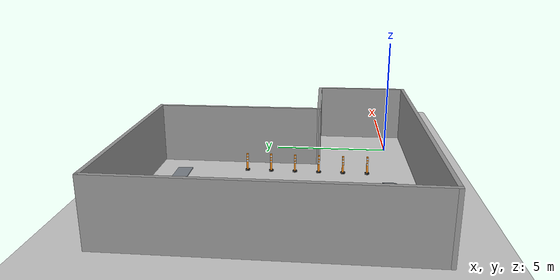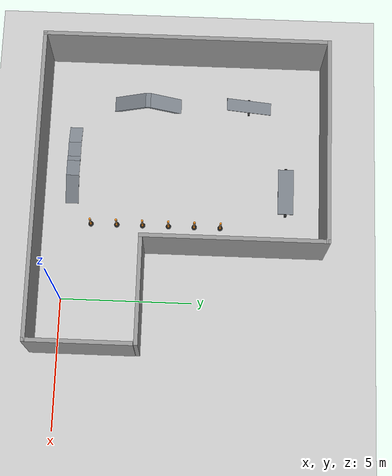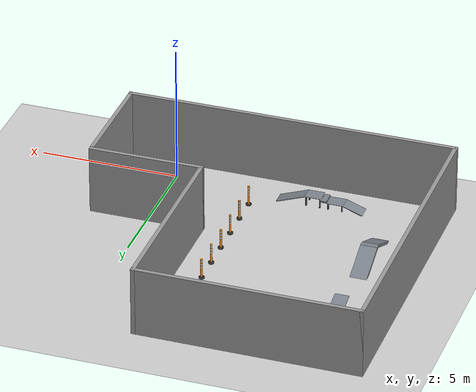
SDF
<sdf version="1.7">
 <world name="default">
  <light name="sun" type="directional">
   <pose>0 0 10 0 -0 0</pose>
   <diffuse>0.8 0.8 0.8 1</diffuse>
   <specular>0.1 0.1 0.1 1</specular>
   <attenuation>
    <range>1000</range>
    <constant>0.9</constant>
    <linear>0.01</linear>
    <quadratic>0.001</quadratic>
   </attenuation>
   <direction>-0.5 0.5 -1</direction>
   <spot><inner_angle>0</inner_angle><outer_angle>0</outer_angle><falloff>0</falloff></spot>
  </light>
  <model name="ground_plane">
   <static>1</static>
   <link name="link">
    <collision name="collision">
     <geometry><plane><normal>0 0 1</normal><size>100 100</size></plane></geometry>
     <surface><friction><ode><mu>100</mu><mu2>50</mu2></ode></friction></surface>
    </collision>
    <visual name="visual">
     <cast_shadows>0</cast_shadows>
     <geometry><plane><normal>0 0 1</normal><size>100 100</size></plane></geometry>
     <material>
      <script><uri>file://media/materials/scripts/gazebo.material</uri><name>Gazebo/Grey</name></script>
     </material>
    </visual>
   </link>
  </model>
  <model name="a_frame_ramp">
   <static>1</static>
   <pose>-8.0 3.0 0 0 0 1.57</pose>
   <link name="a_frame_link">
    <collision name="ramp_left_collision">
     <geometry><box><size>1.4 0.6 0.1</size></box></geometry>
     <pose>-0.713 0 0.209 0 -0.436 0</pose>
    </collision>
    <visual name="ramp_left_visual">
     <geometry><box><size>1.4 0.6 0.1</size></box></geometry>
     <pose>-0.713 0 0.209 0 -0.436 0</pose>
     <material>
      <script><uri>file://media/materials/scripts/gazebo.material</uri><name>Gazebo/Grey</name></script>
      <ambient>0.4902 0.5176 0.5490 1</ambient>
      <diffuse>0.4902 0.5176 0.5490 1</diffuse>
     </material>
    </visual>
    <collision name="ramp_right_collision">
     <geometry><box><size>1.4 0.6 0.1</size></box></geometry>
     <pose>0.713 0 0.209 0 0.436 0</pose>
    </collision>
    <visual name="ramp_right_visual">
     <geometry><box><size>1.4 0.6 0.1</size></box></geometry>
     <pose>0.713 0 0.209 0 0.436 0</pose>
     <material>
      <script><uri>file://media/materials/scripts/gazebo.material</uri><name>Gazebo/Grey</name></script>
      <ambient>0.4902 0.5176 0.5490 1</ambient>
      <diffuse>0.4902 0.5176 0.5490 1</diffuse>
     </material>
    </visual>
    <collision name="peak_collision">
     <geometry><box><size>0.2 0.6 0.1</size></box></geometry>
     <pose>0 0 0.5 0 0 0</pose>
    </collision>
    <visual name="peak_visual">
     <geometry><box><size>0.2 0.6 0.1</size></box></geometry>
     <pose>0 0 0.5 0 0 0</pose>
     <material>
      <script><uri>file://media/materials/scripts/gazebo.material</uri><name>Gazebo/Grey</name></script>
      <ambient>0.4902 0.5176 0.5490 1</ambient>
      <diffuse>0.4902 0.5176 0.5490 1</diffuse>
     </material>
    </visual>
   </link>
  </model>
  <model name="suspension_bridge">
   <static>1</static>
   <pose>-4.5 8.5 0 0 0 0</pose>
   <link name="bridge_link">
    <collision name="deck_collision">
     <geometry><box><size>1.8 0.6 0.05</size></box></geometry>
     <pose>0 0 0.25 0 0 0</pose>
    </collision>
    <visual name="deck_visual">
     <geometry><box><size>1.8 0.6 0.05</size></box></geometry>
     <pose>0 0 0.25 0 0 0</pose>
     <material>
      <script><uri>file://media/materials/scripts/gazebo.material</uri><name>Gazebo/Grey</name></script>
      <ambient>0.4902 0.5176 0.5490 1</ambient>
      <diffuse>0.4902 0.5176 0.5490 1</diffuse>
     </material>
    </visual>
    <collision name="post1_collision">
     <geometry><box><size>0.1 0.1 0.25</size></box></geometry>
     <pose>-0.9 0 0.125 0 0 0</pose>
    </collision>
    <visual name="post1_visual">
     <geometry><box><size>0.1 0.1 0.25</size></box></geometry>
     <pose>-0.9 0 0.125 0 0 0</pose>
     <material>
      <script><uri>file://media/materials/scripts/gazebo.material</uri><name>Gazebo/Black</name></script>
     </material>
    </visual>
    <collision name="post2_collision">
     <geometry><box><size>0.1 0.1 0.25</size></box></geometry>
     <pose>0.9 0 0.125 0 0 0</pose>
    </collision>
    <visual name="post2_visual">
     <geometry><box><size>0.1 0.1 0.25</size></box></geometry>
     <pose>0.9 0 0.125 0 0 0</pose>
     <material>
      <script><uri>file://media/materials/scripts/gazebo.material</uri><name>Gazebo/Black</name></script>
     </material>
    </visual>
   </link>
  </model>
  <model name="balance_seesaw">
   <pose>-8.0 7.0 0 0 0 -1.57</pose>
   <link name="seesaw_base">
    <kinematic>1</kinematic>
    <gravity>0</gravity>
    <collision name="post_left_col">
     <geometry><box><size>0.08 0.08 0.2</size></box></geometry>
     <pose>0 -0.26 0.1 0 0 0</pose>
    </collision>
    <visual name="post_left_vis">
     <geometry><box><size>0.08 0.08 0.2</size></box></geometry>
     <pose>0 -0.26 0.1 0 0 0</pose>
     <material>
      <script><uri>file://media/materials/scripts/gazebo.material</uri><name>Gazebo/Black</name></script>
     </material>
    </visual>
    <collision name="post_right_col">
     <geometry><box><size>0.08 0.08 0.2</size></box></geometry>
     <pose>0 0.26 0.1 0 0 0</pose>
    </collision>
    <visual name="post_right_vis">
     <geometry><box><size>0.08 0.08 0.2</size></box></geometry>
     <pose>0 0.26 0.1 0 0 0</pose>
     <material>
      <script><uri>file://media/materials/scripts/gazebo.material</uri><name>Gazebo/Black</name></script>
     </material>
    </visual>
    <collision name="pivot_cylinder_col">
     <geometry><cylinder><radius>0.01</radius><length>0.6</length></cylinder></geometry>
     <pose>0 0 0.2 1.5708 0 0</pose>
    </collision>
    <visual name="pivot_cylinder_vis">
     <geometry><cylinder><radius>0.01</radius><length>0.6</length></cylinder></geometry>
     <pose>0 0 0.2 1.5708 0 0</pose>
     <material>
      <script><uri>file://media/materials/scripts/gazebo.material</uri><name>Gazebo/Grey</name></script>
     </material>
    </visual>
   </link>
   <link name="seesaw_board">
    <inertial>
     <mass>5.0</mass>
     <inertia><ixx>0.104</ixx><ixy>0</ixy><ixz>0</ixz><iyy>1.35</iyy><iyz>0</iyz><izz>1.45</izz></inertia>
    </inertial>
    <collision name="board_collision">
     <geometry><box><size>1.8 0.5 0.025</size></box></geometry>
     <pose>0 0 0.2225 0 -0.23 0</pose>
     <surface><friction><ode><mu>1.0</mu><mu2>1.0</mu2></ode></friction></surface>
    </collision>
    <visual name="board_visual">
     <geometry><box><size>1.8 0.5 0.025</size></box></geometry>
     <pose>0 0 0.2225 0 -0.23 0</pose>
     <material>
      <script><uri>file://media/materials/scripts/gazebo.material</uri><name>Gazebo/Grey</name></script>
      <ambient>0.4902 0.5176 0.5490 1</ambient>
      <diffuse>0.4902 0.5176 0.5490 1</diffuse>
     </material>
    </visual>
   </link>
   <joint name="seesaw_joint" type="revolute">
    <parent>seesaw_base</parent>
    <child>seesaw_board</child>
    <pose>0 0 0.2 0 0 0</pose>
    <axis>
     <xyz>0 1 0</xyz>
     <limit><lower>-0.15</lower><upper>0.15</upper><effort>100</effort><velocity>2</velocity></limit>
     <dynamics><damping>0.01</damping><friction>0.01</friction></dynamics>
    </axis>
   </joint>
  </model>
  <model name="slalom_cones">
   <static>1</static>
   <pose>-3.0 1.0 0 0 0 1.571</pose>
   <link name="cone_1">
    <collision name="base_col_1">
     <geometry><cylinder><radius>0.1</radius><length>0.05</length></cylinder></geometry>
     <pose>0 0 0.025 0 0 0</pose>
    </collision>
    <visual name="base_vis_1">
     <geometry><cylinder><radius>0.1</radius><length>0.05</length></cylinder></geometry>
     <pose>0 0 0.025 0 0 0</pose>
     <material><script><name>Gazebo/Black</name></script></material>
    </visual>
    <collision name="cone_col_1">
     <geometry><cylinder><radius>0.04</radius><length>0.7</length></cylinder></geometry>
     <pose>0 0 0.40 0 0 0</pose>
    </collision>
    <visual name="cone_vis_1">
     <geometry><cylinder><radius>0.04</radius><length>0.7</length></cylinder></geometry>
     <pose>0 0 0.40 0 0 0</pose>
     <material><script><name>Gazebo/Orange</name></script></material>
    </visual>
    <visual name="stripe1_vis_1">
     <geometry><cylinder><radius>0.041</radius><length>0.06</length></cylinder></geometry>
     <pose>0 0 0.66 0 0 0</pose>
     <material><script><name>Gazebo/White</name></script></material>
    </visual>
    <visual name="stripe2_vis_1">
     <geometry><cylinder><radius>0.041</radius><length>0.06</length></cylinder></geometry>
     <pose>0 0 0.54 0 0 0</pose>
     <material><script><name>Gazebo/White</name></script></material>
    </visual>
    <visual name="stripe3_vis_1">
     <geometry><cylinder><radius>0.041</radius><length>0.06</length></cylinder></geometry>
     <pose>0 0 0.42 0 0 0</pose>
     <material><script><name>Gazebo/White</name></script></material>
    </visual>
   </link>
   <link name="cone_2">
    <pose>1.0 0 0 0 0 0</pose>
    <collision name="base_col_2">
     <geometry><cylinder><radius>0.1</radius><length>0.05</length></cylinder></geometry>
     <pose>0 0 0.025 0 0 0</pose>
    </collision>
    <visual name="base_vis_2">
     <geometry><cylinder><radius>0.1</radius><length>0.05</length></cylinder></geometry>
     <pose>0 0 0.025 0 0 0</pose>
     <material><script><name>Gazebo/Black</name></script></material>
    </visual>
    <collision name="cone_col_2">
     <geometry><cylinder><radius>0.04</radius><length>0.7</length></cylinder></geometry>
     <pose>0 0 0.40 0 0 0</pose>
    </collision>
    <visual name="cone_vis_2">
     <geometry><cylinder><radius>0.04</radius><length>0.7</length></cylinder></geometry>
     <pose>0 0 0.40 0 0 0</pose>
     <material><script><name>Gazebo/Orange</name></script></material>
    </visual>
    <visual name="stripe1_vis_2">
     <geometry><cylinder><radius>0.041</radius><length>0.06</length></cylinder></geometry>
     <pose>0 0 0.66 0 0 0</pose>
     <material><script><name>Gazebo/White</name></script></material>
    </visual>
    <visual name="stripe2_vis_2">
     <geometry><cylinder><radius>0.041</radius><length>0.06</length></cylinder></geometry>
     <pose>0 0 0.54 0 0 0</pose>
     <material><script><name>Gazebo/White</name></script></material>
    </visual>
    <visual name="stripe3_vis_2">
     <geometry><cylinder><radius>0.041</radius><length>0.06</length></cylinder></geometry>
     <pose>0 0 0.42 0 0 0</pose>
     <material><script><name>Gazebo/White</name></script></material>
    </visual>
   </link>
   <link name="cone_3">
    <pose>2.0 0 0 0 0 0</pose>
    <collision name="base_col_3">
     <geometry><cylinder><radius>0.1</radius><length>0.05</length></cylinder></geometry>
     <pose>0 0 0.025 0 0 0</pose>
    </collision>
    <visual name="base_vis_3">
     <geometry><cylinder><radius>0.1</radius><length>0.05</length></cylinder></geometry>
     <pose>0 0 0.025 0 0 0</pose>
     <material><script><name>Gazebo/Black</name></script></material>
    </visual>
    <collision name="cone_col_3">
     <geometry><cylinder><radius>0.04</radius><length>0.7</length></cylinder></geometry>
     <pose>0 0 0.40 0 0 0</pose>
    </collision>
    <visual name="cone_vis_3">
     <geometry><cylinder><radius>0.04</radius><length>0.7</length></cylinder></geometry>
     <pose>0 0 0.40 0 0 0</pose>
     <material><script><name>Gazebo/Orange</name></script></material>
    </visual>
    <visual name="stripe1_vis_3">
     <geometry><cylinder><radius>0.041</radius><length>0.06</length></cylinder></geometry>
     <pose>0 0 0.66 0 0 0</pose>
     <material><script><name>Gazebo/White</name></script></material>
    </visual>
    <visual name="stripe2_vis_3">
     <geometry><cylinder><radius>0.041</radius><length>0.06</length></cylinder></geometry>
     <pose>0 0 0.54 0 0 0</pose>
     <material><script><name>Gazebo/White</name></script></material>
    </visual>
    <visual name="stripe3_vis_3">
     <geometry><cylinder><radius>0.041</radius><length>0.06</length></cylinder></geometry>
     <pose>0 0 0.42 0 0 0</pose>
     <material><script><name>Gazebo/White</name></script></material>
    </visual>
   </link>
   <link name="cone_4">
    <pose>3.0 0 0 0 0 0</pose>
    <collision name="base_col_4">
     <geometry><cylinder><radius>0.1</radius><length>0.05</length></cylinder></geometry>
     <pose>0 0 0.025 0 0 0</pose>
    </collision>
    <visual name="base_vis_4">
     <geometry><cylinder><radius>0.1</radius><length>0.05</length></cylinder></geometry>
     <pose>0 0 0.025 0 0 0</pose>
     <material><script><name>Gazebo/Black</name></script></material>
    </visual>
    <collision name="cone_col_4">
     <geometry><cylinder><radius>0.04</radius><length>0.7</length></cylinder></geometry>
     <pose>0 0 0.40 0 0 0</pose>
    </collision>
    <visual name="cone_vis_4">
     <geometry><cylinder><radius>0.04</radius><length>0.7</length></cylinder></geometry>
     <pose>0 0 0.40 0 0 0</pose>
     <material><script><name>Gazebo/Orange</name></script></material>
    </visual>
    <visual name="stripe1_vis_4">
     <geometry><cylinder><radius>0.041</radius><length>0.06</length></cylinder></geometry>
     <pose>0 0 0.66 0 0 0</pose>
     <material><script><name>Gazebo/White</name></script></material>
    </visual>
    <visual name="stripe2_vis_4">
     <geometry><cylinder><radius>0.041</radius><length>0.06</length></cylinder></geometry>
     <pose>0 0 0.54 0 0 0</pose>
     <material><script><name>Gazebo/White</name></script></material>
    </visual>
    <visual name="stripe3_vis_4">
     <geometry><cylinder><radius>0.041</radius><length>0.06</length></cylinder></geometry>
     <pose>0 0 0.42 0 0 0</pose>
     <material><script><name>Gazebo/White</name></script></material>
    </visual>
   </link>
   <link name="cone_5">
    <pose>4.0 0 0 0 0 0</pose>
    <collision name="base_col_5">
     <geometry><cylinder><radius>0.1</radius><length>0.05</length></cylinder></geometry>
     <pose>0 0 0.025 0 0 0</pose>
    </collision>
    <visual name="base_vis_5">
     <geometry><cylinder><radius>0.1</radius><length>0.05</length></cylinder></geometry>
     <pose>0 0 0.025 0 0 0</pose>
     <material><script><name>Gazebo/Black</name></script></material>
    </visual>
    <collision name="cone_col_5">
     <geometry><cylinder><radius>0.04</radius><length>0.7</length></cylinder></geometry>
     <pose>0 0 0.40 0 0 0</pose>
    </collision>
    <visual name="cone_vis_5">
     <geometry><cylinder><radius>0.04</radius><length>0.7</length></cylinder></geometry>
     <pose>0 0 0.40 0 0 0</pose>
     <material><script><name>Gazebo/Orange</name></script></material>
    </visual>
    <visual name="stripe1_vis_5">
     <geometry><cylinder><radius>0.041</radius><length>0.06</length></cylinder></geometry>
     <pose>0 0 0.66 0 0 0</pose>
     <material><script><name>Gazebo/White</name></script></material>
    </visual>
    <visual name="stripe2_vis_5">
     <geometry><cylinder><radius>0.041</radius><length>0.06</length></cylinder></geometry>
     <pose>0 0 0.54 0 0 0</pose>
     <material><script><name>Gazebo/White</name></script></material>
    </visual>
    <visual name="stripe3_vis_5">
     <geometry><cylinder><radius>0.041</radius><length>0.06</length></cylinder></geometry>
     <pose>0 0 0.42 0 0 0</pose>
     <material><script><name>Gazebo/White</name></script></material>
    </visual>
   </link>
   <link name="cone_6">
    <pose>5.0 0 0 0 0 0</pose>
    <collision name="base_col_6">
     <geometry><cylinder><radius>0.1</radius><length>0.05</length></cylinder></geometry>
     <pose>0 0 0.025 0 0 0</pose>
    </collision>
    <visual name="base_vis_6">
     <geometry><cylinder><radius>0.1</radius><length>0.05</length></cylinder></geometry>
     <pose>0 0 0.025 0 0 0</pose>
     <material><script><name>Gazebo/Black</name></script></material>
    </visual>
    <collision name="cone_col_6">
     <geometry><cylinder><radius>0.04</radius><length>0.7</length></cylinder></geometry>
     <pose>0 0 0.40 0 0 0</pose>
    </collision>
    <visual name="cone_vis_6">
     <geometry><cylinder><radius>0.04</radius><length>0.7</length></cylinder></geometry>
     <pose>0 0 0.40 0 0 0</pose>
     <material><script><name>Gazebo/Orange</name></script></material>
    </visual>
    <visual name="stripe1_vis_6">
     <geometry><cylinder><radius>0.041</radius><length>0.06</length></cylinder></geometry>
     <pose>0 0 0.66 0 0 0</pose>
     <material><script><name>Gazebo/White</name></script></material>
    </visual>
    <visual name="stripe2_vis_6">
     <geometry><cylinder><radius>0.041</radius><length>0.06</length></cylinder></geometry>
     <pose>0 0 0.54 0 0 0</pose>
     <material><script><name>Gazebo/White</name></script></material>
    </visual>
    <visual name="stripe3_vis_6">
     <geometry><cylinder><radius>0.041</radius><length>0.06</length></cylinder></geometry>
     <pose>0 0 0.42 0 0 0</pose>
     <material><script><name>Gazebo/White</name></script></material>
    </visual>
   </link>
  </model>
  <model name="platforms_and_ramps">
   <static>1</static>
   <pose>-7.0 0.2 0 0 0 0</pose>
   <link name="platforms_link">
    <collision name="ramp1_col">
     <geometry><box><size>0.75 0.5 0.025</size></box></geometry>
     <pose>0.402 0 0.1098 0 -0.35 0</pose>
    </collision>
    <visual name="ramp1_vis">
     <geometry><box><size>0.75 0.5 0.025</size></box></geometry>
     <pose>0.402 0 0.1098 0 -0.35 0</pose>
     <material>
      <script><name>Gazebo/Grey</name></script>
      <ambient>0.4902 0.5176 0.5490 1</ambient>
      <diffuse>0.4902 0.5176 0.5490 1</diffuse>
     </material>
    </visual>
    <collision name="plat1_top_col">
     <geometry><box><size>0.6 0.5 0.01</size></box></geometry>
     <pose>1.05 0 0.245 0 0 0</pose>
    </collision>
    <visual name="plat1_top_vis">
     <geometry><box><size>0.6 0.5 0.01</size></box></geometry>
     <pose>1.05 0 0.245 0 0 0</pose>
     <material>
      <script><name>Gazebo/Grey</name></script>
      <ambient>0.4902 0.5176 0.5490 1</ambient>
      <diffuse>0.4902 0.5176 0.5490 1</diffuse>
     </material>
    </visual>
    <collision name="plat1_leg1_col">
     <geometry><box><size>0.05 0.05 0.25</size></box></geometry>
     <pose>0.8 0.2 0.124 0 0 0</pose>
    </collision>
    <visual name="plat1_leg1_vis">
     <geometry><box><size>0.05 0.05 0.25</size></box></geometry>
     <pose>0.8 0.2 0.124 0 0 0</pose>
     <material><script><name>Gazebo/Black</name></script></material>
    </visual>
    <collision name="plat1_leg2_col">
     <geometry><box><size>0.05 0.05 0.25</size></box></geometry>
     <pose>0.8 -0.2 0.124 0 0 0</pose>
    </collision>
    <visual name="plat1_leg2_vis">
     <geometry><box><size>0.05 0.05 0.25</size></box></geometry>
     <pose>0.8 -0.2 0.124 0 0 0</pose>
     <material><script><name>Gazebo/Black</name></script></material>
    </visual>
    <collision name="plat1_leg3_col">
     <geometry><box><size>0.05 0.05 0.25</size></box></geometry>
     <pose>1.3 0.2 0.124 0 0 0</pose>
    </collision>
    <visual name="plat1_leg3_vis">
     <geometry><box><size>0.05 0.05 0.25</size></box></geometry>
     <pose>1.3 0.2 0.124 0 0 0</pose>
     <material><script><name>Gazebo/Black</name></script></material>
    </visual>
    <collision name="plat1_leg4_col">
     <geometry><box><size>0.05 0.05 0.25</size></box></geometry>
     <pose>1.3 -0.2 0.124 0 0 0</pose>
    </collision>
    <visual name="plat1_leg4_vis">
     <geometry><box><size>0.05 0.05 0.25</size></box></geometry>
     <pose>1.3 -0.2 0.124 0 0 0</pose>
     <material><script><name>Gazebo/Black</name></script></material>
    </visual>
    <collision name="step_col">
     <geometry><box><size>0.2 0.5 0.06</size></box></geometry>
     <pose>1.45 0 0.28 0 0 0</pose>
    </collision>
    <visual name="step_vis">
     <geometry><box><size>0.2 0.5 0.06</size></box></geometry>
     <pose>1.45 0 0.28 0 0 0</pose>
     <material>
      <script><name>Gazebo/Grey</name></script>
      <ambient>0.4902 0.5176 0.5490 1</ambient>
      <diffuse>0.4902 0.5176 0.5490 1</diffuse>
     </material>
    </visual>
    <collision name="plat2_top_col">
     <geometry><box><size>0.6 0.5 0.01</size></box></geometry>
     <pose>1.85 0 0.365 0 0 0</pose>
    </collision>
    <visual name="plat2_top_vis">
     <geometry><box><size>0.6 0.5 0.01</size></box></geometry>
     <pose>1.85 0 0.365 0 0 0</pose>
     <material>
      <script><name>Gazebo/Grey</name></script>
      <ambient>0.4902 0.5176 0.5490 1</ambient>
      <diffuse>0.4902 0.5176 0.5490 1</diffuse>
     </material>
    </visual>
    <collision name="plat2_leg1_col">
     <geometry><box><size>0.05 0.05 0.37</size></box></geometry>
     <pose>1.6 0.2 0.184 0 0 0</pose>
    </collision>
    <visual name="plat2_leg1_vis">
     <geometry><box><size>0.05 0.05 0.37</size></box></geometry>
     <pose>1.6 0.2 0.184 0 0 0</pose>
     <material><script><name>Gazebo/Black</name></script></material>
    </visual>
    <collision name="plat2_leg2_col">
     <geometry><box><size>0.05 0.05 0.37</size></box></geometry>
     <pose>1.6 -0.2 0.184 0 0 0</pose>
    </collision>
    <visual name="plat2_leg2_vis">
     <geometry><box><size>0.05 0.05 0.37</size></box></geometry>
     <pose>1.6 -0.2 0.184 0 0 0</pose>
     <material><script><name>Gazebo/Black</name></script></material>
    </visual>
    <collision name="plat2_leg3_col">
     <geometry><box><size>0.05 0.05 0.37</size></box></geometry>
     <pose>2.1 0.2 0.184 0 0 0</pose>
    </collision>
    <visual name="plat2_leg3_vis">
     <geometry><box><size>0.05 0.05 0.37</size></box></geometry>
     <pose>2.1 0.2 0.184 0 0 0</pose>
     <material><script><name>Gazebo/Black</name></script></material>
    </visual>
    <collision name="plat2_leg4_col">
     <geometry><box><size>0.05 0.05 0.37</size></box></geometry>
     <pose>2.1 -0.2 0.184 0 0 0</pose>
    </collision>
    <visual name="plat2_leg4_vis">
     <geometry><box><size>0.05 0.05 0.37</size></box></geometry>
     <pose>2.1 -0.2 0.184 0 0 0</pose>
     <material><script><name>Gazebo/Black</name></script></material>
    </visual>
    <collision name="ramp2_col">
     <geometry><box><size>1.10 0.5 0.025</size></box></geometry>
     <pose>2.662 0 0.17 0 0.35 0</pose>
    </collision>
    <visual name="ramp2_vis">
     <geometry><box><size>1.10 0.5 0.025</size></box></geometry>
     <pose>2.662 0 0.17 0 0.35 0</pose>
     <material>
      <script><name>Gazebo/Grey</name></script>
      <ambient>0.4902 0.5176 0.5490 1</ambient>
      <diffuse>0.4902 0.5176 0.5490 1</diffuse>
     </material>
    </visual>
   </link>
  </model>
  <gravity>0 0 -9.8</gravity>
  <magnetic_field>6e-06 2.3e-05 -4.2e-05</magnetic_field>
  <atmosphere type="adiabatic"/>
  <physics name="default_physics" default="0" type="ode">
   <max_step_size>0.001</max_step_size>
   <real_time_factor>1</real_time_factor>
   <real_time_update_rate>1000</real_time_update_rate>
  </physics>
  <scene><ambient>0.4 0.4 0.4 1</ambient><background>0.7 0.7 0.7 1</background><shadows>1</shadows></scene>
  <spherical_coordinates>
   <surface_model>EARTH_WGS84</surface_model>
   <latitude_deg>0</latitude_deg>
   <longitude_deg>0</longitude_deg>
   <elevation>0</elevation>
   <heading_deg>0</heading_deg>
  </spherical_coordinates>
  <audio><device>default</device></audio>
  <model name="Arena">
   <pose>-3.90745 4.47486 0 0 -0 0</pose>
   <link name="Wall_0">
    <collision name="Wall_0_Collision">
     <geometry><box><size>4 0.15 2.5</size></box></geometry>
     <pose>0 0 1.25 0 -0 0</pose>
    </collision>
    <visual name="Wall_0_Visual">
     <pose>0 0 1.25 0 -0 0</pose>
     <geometry><box><size>4 0.15 2.5</size></box></geometry>
     <material>
      <script><uri>file://media/materials/scripts/gazebo.material</uri><name>Gazebo/Grey</name></script>
      <ambient>0.870588 0.866667 0.854902 1</ambient>
     </material>
     <meta><layer>0</layer></meta>
    </visual>
    <pose>5.925 -3.5 0 0 -0 1.5708</pose>
   </link>
   <link name="Wall_11">
    <collision name="Wall_11_Collision">
     <geometry><box><size>7 0.15 2.5</size></box></geometry>
     <pose>0 0 1.25 0 -0 0</pose>
    </collision>
    <visual name="Wall_11_Visual">
     <pose>0 0 1.25 0 -0 0</pose>
     <geometry><box><size>7 0.15 2.5</size></box></geometry>
     <material>
      <script><uri>file://media/materials/scripts/gazebo.material</uri><name>Gazebo/Grey</name></script>
      <ambient>0.870588 0.866667 0.854902 1</ambient>
     </material>
     <meta><layer>0</layer></meta>
    </visual>
    <pose>1.925 2 0 0 -0 -1.5708</pose>
   </link>
   <link name="Wall_12">
    <collision name="Wall_12_Collision">
     <geometry><box><size>4.1391 0.15 2.5</size></box></geometry>
     <pose>0 0 1.25 0 -0 0</pose>
    </collision>
    <visual name="Wall_12_Visual">
     <pose>0 0 1.25 0 -0 0</pose>
     <geometry><box><size>4.1391 0.15 2.5</size></box></geometry>
     <material>
      <script><uri>file://media/materials/scripts/gazebo.material</uri><name>Gazebo/Grey</name></script>
      <ambient>0.870588 0.866667 0.854902 1</ambient>
     </material>
     <meta><layer>0</layer></meta>
    </visual>
    <pose>3.91954 -1.41861 0 0 -0 0.003203</pose>
   </link>
   <link name="Wall_2">
    <collision name="Wall_2_Collision">
     <geometry><box><size>12 0.15 2.5</size></box></geometry>
     <pose>0 0 1.25 0 -0 0</pose>
    </collision>
    <visual name="Wall_2_Visual">
     <pose>0 0 1.25 0 -0 0</pose>
     <geometry><box><size>12 0.15 2.5</size></box></geometry>
     <material>
      <script><uri>file://media/materials/scripts/gazebo.material</uri><name>Gazebo/Grey</name></script>
      <ambient>0.870588 0.866667 0.854902 1</ambient>
     </material>
     <meta><layer>0</layer></meta>
    </visual>
    <pose>0 -5.425 0 0 -0 3.14159</pose>
   </link>
   <link name="Wall_4">
    <collision name="Wall_4_Collision">
     <geometry><box><size>11 0.15 2.5</size></box></geometry>
     <pose>0 0 1.25 0 -0 0</pose>
    </collision>
    <visual name="Wall_4_Visual">
     <pose>0 0 1.25 0 -0 0</pose>
     <geometry><box><size>11 0.15 2.5</size></box></geometry>
     <material>
      <script><uri>file://media/materials/scripts/gazebo.material</uri><name>Gazebo/Grey</name></script>
      <ambient>0.870588 0.866667 0.854902 1</ambient>
     </material>
     <meta><layer>0</layer></meta>
    </visual>
    <pose>-5.925 0 0 0 -0 1.5708</pose>
   </link>
   <link name="Wall_9">
    <collision name="Wall_9_Collision">
     <geometry><box><size>8 0.15 2.5</size></box></geometry>
     <pose>0 0 1.25 0 -0 0</pose>
    </collision>
    <visual name="Wall_9_Visual">
     <pose>0 0 1.25 0 -0 0</pose>
     <geometry><box><size>8 0.15 2.5</size></box></geometry>
     <material>
      <script><uri>file://media/materials/scripts/gazebo.material</uri><name>Gazebo/Grey</name></script>
      <ambient>0.870588 0.866667 0.854902 1</ambient>
     </material>
     <meta><layer>0</layer></meta>
    </visual>
    <pose>-2 5.425 0 0 -0 0</pose>
   </link>
   <static>1</static>
  </model>
 </world>
</sdf>
